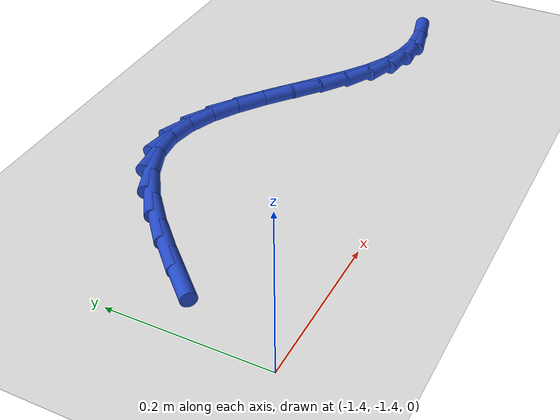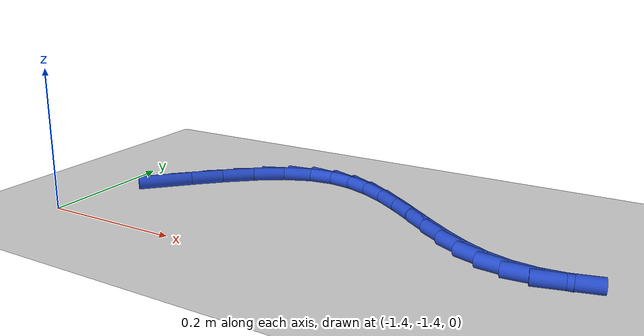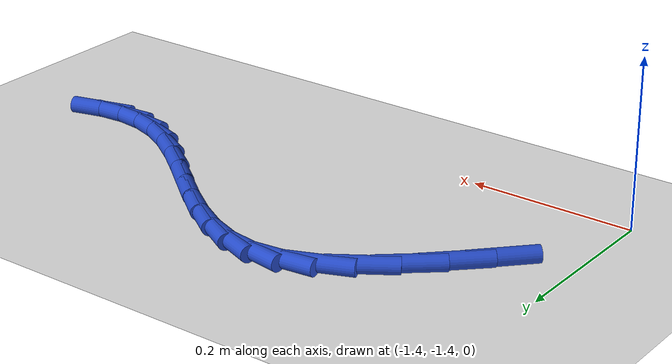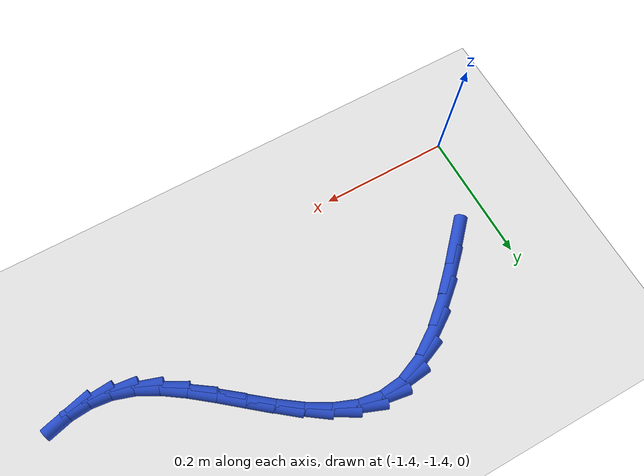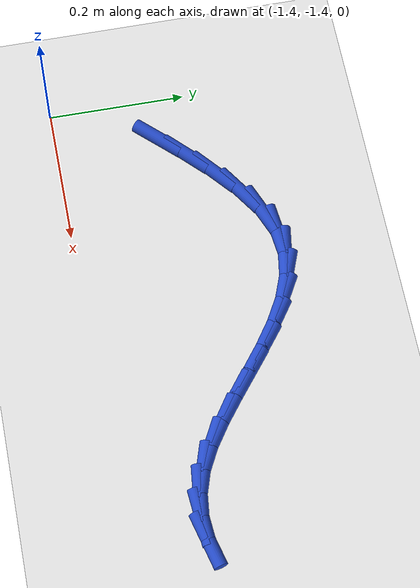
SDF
<sdf version="1.6">
 <world name="default">
  <model name="ground_plane">
   <static>1</static>
   <link name="link">
    <collision name="collision">
     <geometry><plane><normal>0 0 1</normal><size>100 100</size></plane></geometry>
     <surface><friction><ode><mu>100</mu><mu2>50</mu2></ode></friction></surface>
    </collision>
    <visual name="visual">
     <cast_shadows>0</cast_shadows>
     <geometry><plane><normal>0 0 1</normal><size>100 100</size></plane></geometry>
     <material>
      <script><uri>file://media/materials/scripts/gazebo.material</uri><name>Gazebo/WhiteGlow</name></script>
     </material>
    </visual>
   </link>
  </model>
  <model name="line">
   <link name="link_172">
    <pose>-1.3316946653964208 -1.2487145324288205 0.01 0 1.57 0.8140410854238846</pose>
    <collision name="collision">
     <geometry><cylinder><radius>0.01</radius><length>0.08</length></cylinder></geometry>
    </collision>
    <visual name="visual">
     <material>
      <script><name>Gazebo/Blue</name><uri>file://media/materials/scripts/gazebo.material</uri></script>
     </material>
     <geometry><cylinder><radius>0.01</radius><length>0.08</length></cylinder></geometry>
    </visual>
   </link>
   <link name="link_173">
    <pose>-1.2982960791226674 -1.213345707729444 0.01 0 1.57 0.7757048257265122</pose>
    <collision name="collision">
     <geometry><cylinder><radius>0.01</radius><length>0.08</length></cylinder></geometry>
    </collision>
    <visual name="visual">
     <material>
      <script><name>Gazebo/Blue</name><uri>file://media/materials/scripts/gazebo.material</uri></script>
     </material>
     <geometry><cylinder><radius>0.01</radius><length>0.08</length></cylinder></geometry>
    </visual>
   </link>
   <link name="link_174">
    <pose>-1.262694630646296 -1.178427848128902 0.01 0 1.57 0.7043069513829192</pose>
    <collision name="collision">
     <geometry><cylinder><radius>0.01</radius><length>0.08</length></cylinder></geometry>
    </collision>
    <visual name="visual">
     <material>
      <script><name>Gazebo/Blue</name><uri>file://media/materials/scripts/gazebo.material</uri></script>
     </material>
     <geometry><cylinder><radius>0.01</radius><length>0.08</length></cylinder></geometry>
    </visual>
   </link>
   <link name="link_175">
    <pose>-1.225782764819582 -1.1470646570489964 0.01 0 1.57 0.5846245364865164</pose>
    <collision name="collision">
     <geometry><cylinder><radius>0.01</radius><length>0.08</length></cylinder></geometry>
    </collision>
    <visual name="visual">
     <material>
      <script><name>Gazebo/Blue</name><uri>file://media/materials/scripts/gazebo.material</uri></script>
     </material>
     <geometry><cylinder><radius>0.01</radius><length>0.08</length></cylinder></geometry>
    </visual>
   </link>
   <link name="link_176">
    <pose>-1.1884529264948012 -1.1223598379115318 0.01 0 1.57 0.38580671250561277</pose>
    <collision name="collision">
     <geometry><cylinder><radius>0.01</radius><length>0.08</length></cylinder></geometry>
    </collision>
    <visual name="visual">
     <material>
      <script><name>Gazebo/Blue</name><uri>file://media/materials/scripts/gazebo.material</uri></script>
     </material>
     <geometry><cylinder><radius>0.01</radius><length>0.08</length></cylinder></geometry>
    </visual>
   </link>
   <link name="link_177">
    <pose>-1.1515916328519245 -1.1073881992255912 0.01 0 1.57 0.10995423574850902</pose>
    <collision name="collision">
     <geometry><cylinder><radius>0.01</radius><length>0.08</length></cylinder></geometry>
    </collision>
    <visual name="visual">
     <material>
      <script><name>Gazebo/Blue</name><uri>file://media/materials/scripts/gazebo.material</uri></script>
     </material>
     <geometry><cylinder><radius>0.01</radius><length>0.08</length></cylinder></geometry>
    </visual>
   </link>
   <link name="link_178">
    <pose>-1.1157167709147424 -1.1034276323219459 0.01 0 1.57 -0.15626287820007947</pose>
    <collision name="collision">
     <geometry><cylinder><radius>0.01</radius><length>0.08</length></cylinder></geometry>
    </collision>
    <visual name="visual">
     <material>
      <script><name>Gazebo/Blue</name><uri>file://media/materials/scripts/gazebo.material</uri></script>
     </material>
     <geometry><cylinder><radius>0.01</radius><length>0.08</length></cylinder></geometry>
    </visual>
   </link>
   <link name="link_179">
    <pose>-1.080767265851145 -1.1089338326610543 0.01 0 1.57 -0.3685082992834686</pose>
    <collision name="collision">
     <geometry><cylinder><radius>0.01</radius><length>0.08</length></cylinder></geometry>
    </collision>
    <visual name="visual">
     <material>
      <script><name>Gazebo/Blue</name><uri>file://media/materials/scripts/gazebo.material</uri></script>
     </material>
     <geometry><cylinder><radius>0.01</radius><length>0.08</length></cylinder></geometry>
    </visual>
   </link>
   <link name="link_180">
    <pose>-1.046631342460222 -1.1221153527007677 0.01 0 1.57 -0.5182478807090809</pose>
    <collision name="collision">
     <geometry><cylinder><radius>0.01</radius><length>0.08</length></cylinder></geometry>
    </collision>
    <visual name="visual">
     <material>
      <script><name>Gazebo/Blue</name><uri>file://media/materials/scripts/gazebo.material</uri></script>
     </material>
     <geometry><cylinder><radius>0.01</radius><length>0.08</length></cylinder></geometry>
    </visual>
   </link>
   <link name="link_181">
    <pose>-1.0131972255410608 -1.1411807448989386 0.01 0 1.57 -0.6141294446117903</pose>
    <collision name="collision">
     <geometry><cylinder><radius>0.01</radius><length>0.08</length></cylinder></geometry>
    </collision>
    <visual name="visual">
     <material>
      <script><name>Gazebo/Blue</name><uri>file://media/materials/scripts/gazebo.material</uri></script>
     </material>
     <geometry><cylinder><radius>0.01</radius><length>0.08</length></cylinder></geometry>
    </visual>
   </link>
   <link name="link_182">
    <pose>-0.9803531398927486 -1.164338561713417 0.01 0 1.57 -0.66651343577657</pose>
    <collision name="collision">
     <geometry><cylinder><radius>0.01</radius><length>0.08</length></cylinder></geometry>
    </collision>
    <visual name="visual">
     <material>
      <script><name>Gazebo/Blue</name><uri>file://media/materials/scripts/gazebo.material</uri></script>
     </material>
     <geometry><cylinder><radius>0.01</radius><length>0.08</length></cylinder></geometry>
    </visual>
   </link>
   <link name="link_183">
    <pose>-0.9479873103143741 -1.1897973556020558 0.01 0 1.57 -0.6817299594582273</pose>
    <collision name="collision">
     <geometry><cylinder><radius>0.01</radius><length>0.08</length></cylinder></geometry>
    </collision>
    <visual name="visual">
     <material>
      <script><name>Gazebo/Blue</name><uri>file://media/materials/scripts/gazebo.material</uri></script>
     </material>
     <geometry><cylinder><radius>0.01</radius><length>0.08</length></cylinder></geometry>
    </visual>
   </link>
   <link name="link_184">
    <pose>-0.9159879616050237 -1.2157656790227076 0.01 0 1.57 -0.6609671555674727</pose>
    <collision name="collision">
     <geometry><cylinder><radius>0.01</radius><length>0.08</length></cylinder></geometry>
    </collision>
    <visual name="visual">
     <material>
      <script><name>Gazebo/Blue</name><uri>file://media/materials/scripts/gazebo.material</uri></script>
     </material>
     <geometry><cylinder><radius>0.01</radius><length>0.08</length></cylinder></geometry>
    </visual>
   </link>
   <link name="link_185">
    <pose>-0.8842433185637875 -1.2404520844332216 0.01 0 1.57 -0.5998522263963486</pose>
    <collision name="collision">
     <geometry><cylinder><radius>0.01</radius><length>0.08</length></cylinder></geometry>
    </collision>
    <visual name="visual">
     <material>
      <script><name>Gazebo/Blue</name><uri>file://media/materials/scripts/gazebo.material</uri></script>
     </material>
     <geometry><cylinder><radius>0.01</radius><length>0.08</length></cylinder></geometry>
    </visual>
   </link>
   <link name="link_186">
    <pose>-0.8526416059897518 -1.2620651242914505 0.01 0 1.57 -0.48774998910029965</pose>
    <collision name="collision">
     <geometry><cylinder><radius>0.01</radius><length>0.08</length></cylinder></geometry>
    </collision>
    <visual name="visual">
     <material>
      <script><name>Gazebo/Blue</name><uri>file://media/materials/scripts/gazebo.material</uri></script>
     </material>
     <geometry><cylinder><radius>0.01</radius><length>0.08</length></cylinder></geometry>
    </visual>
   </link>
   <link name="link_187">
    <pose>-0.8210710486820048 -1.278813351055246 0.01 0 1.57 -0.3145338517858204</pose>
    <collision name="collision">
     <geometry><cylinder><radius>0.01</radius><length>0.08</length></cylinder></geometry>
    </collision>
    <visual name="visual">
     <material>
      <script><name>Gazebo/Blue</name><uri>file://media/materials/scripts/gazebo.material</uri></script>
     </material>
     <geometry><cylinder><radius>0.01</radius><length>0.08</length></cylinder></geometry>
    </visual>
   </link>
   <link name="link_188">
    <pose>-0.789437152518563 -1.289104929209284 0.01 0 1.57 -0.11587679519685856</pose>
    <collision name="collision">
     <geometry><cylinder><radius>0.01</radius><length>0.08</length></cylinder></geometry>
    </collision>
    <visual name="visual">
     <material>
      <script><name>Gazebo/Blue</name><uri>file://media/materials/scripts/gazebo.material</uri></script>
     </material>
     <geometry><cylinder><radius>0.01</radius><length>0.08</length></cylinder></geometry>
    </visual>
   </link>
   <link name="link_189">
    <pose>-0.7577703372287489 -1.2927908907316417 0.01 0 1.57 0.07685077555819167</pose>
    <collision name="collision">
     <geometry><cylinder><radius>0.01</radius><length>0.08</length></cylinder></geometry>
    </collision>
    <visual name="visual">
     <material>
      <script><name>Gazebo/Blue</name><uri>file://media/materials/scripts/gazebo.material</uri></script>
     </material>
     <geometry><cylinder><radius>0.01</radius><length>0.08</length></cylinder></geometry>
    </visual>
   </link>
   <link name="link_190">
    <pose>-0.7261559305580833 -1.2903565046435488 0.01 0 1.57 0.2508789750060647</pose>
    <collision name="collision">
     <geometry><cylinder><radius>0.01</radius><length>0.08</length></cylinder></geometry>
    </collision>
    <visual name="visual">
     <material>
      <script><name>Gazebo/Blue</name><uri>file://media/materials/scripts/gazebo.material</uri></script>
     </material>
     <geometry><cylinder><radius>0.01</radius><length>0.08</length></cylinder></geometry>
    </visual>
   </link>
  </model>
 </world>
</sdf>
